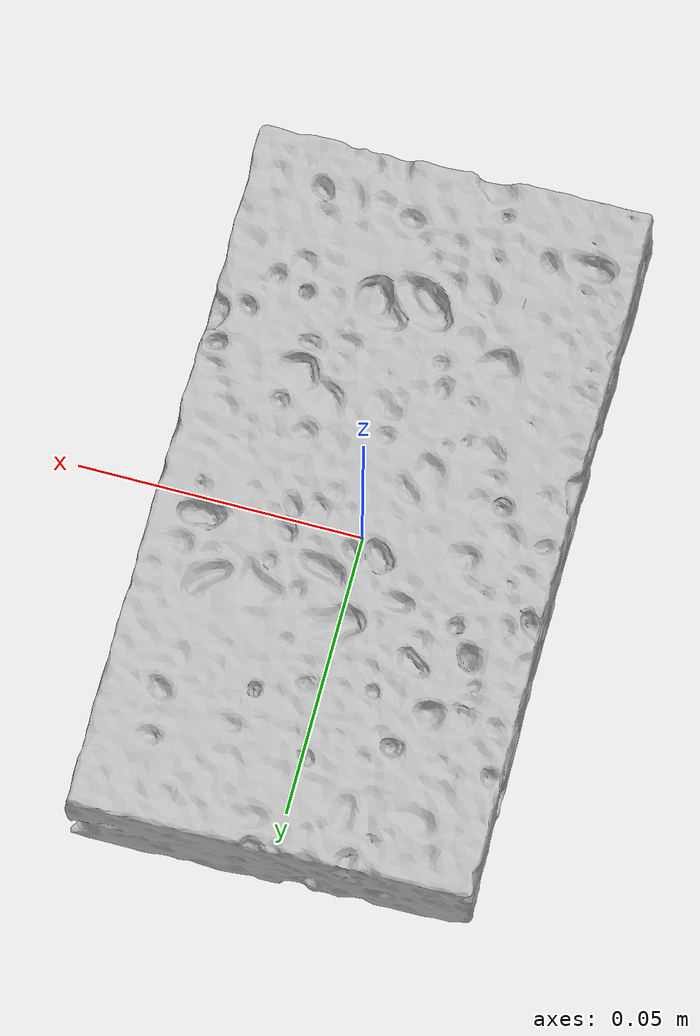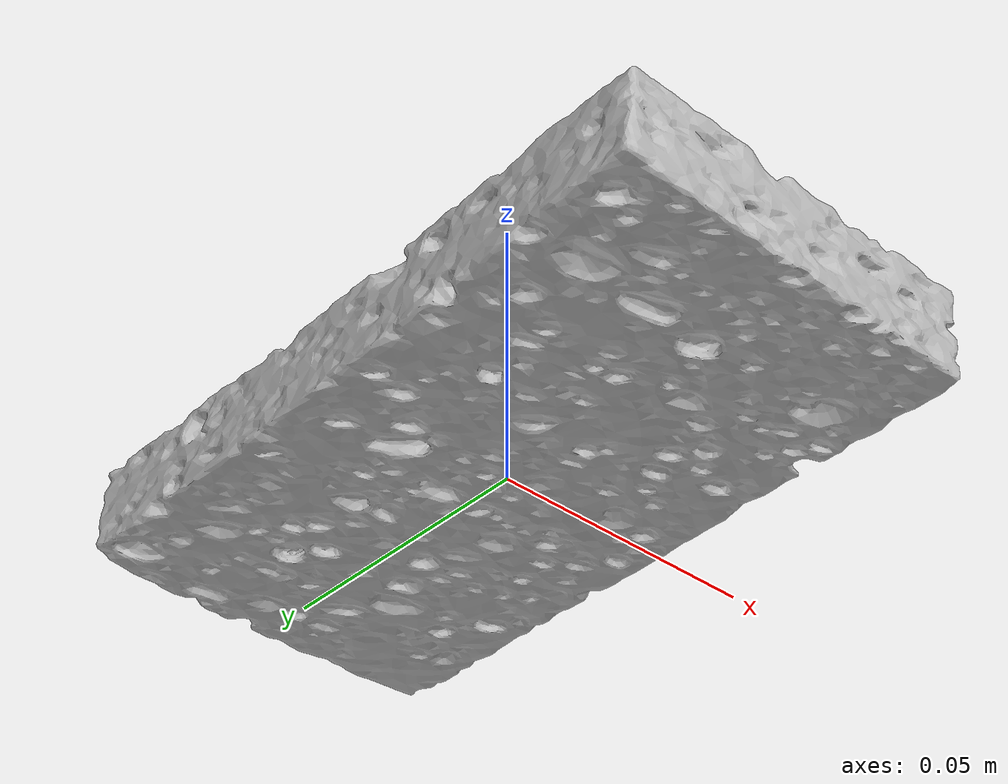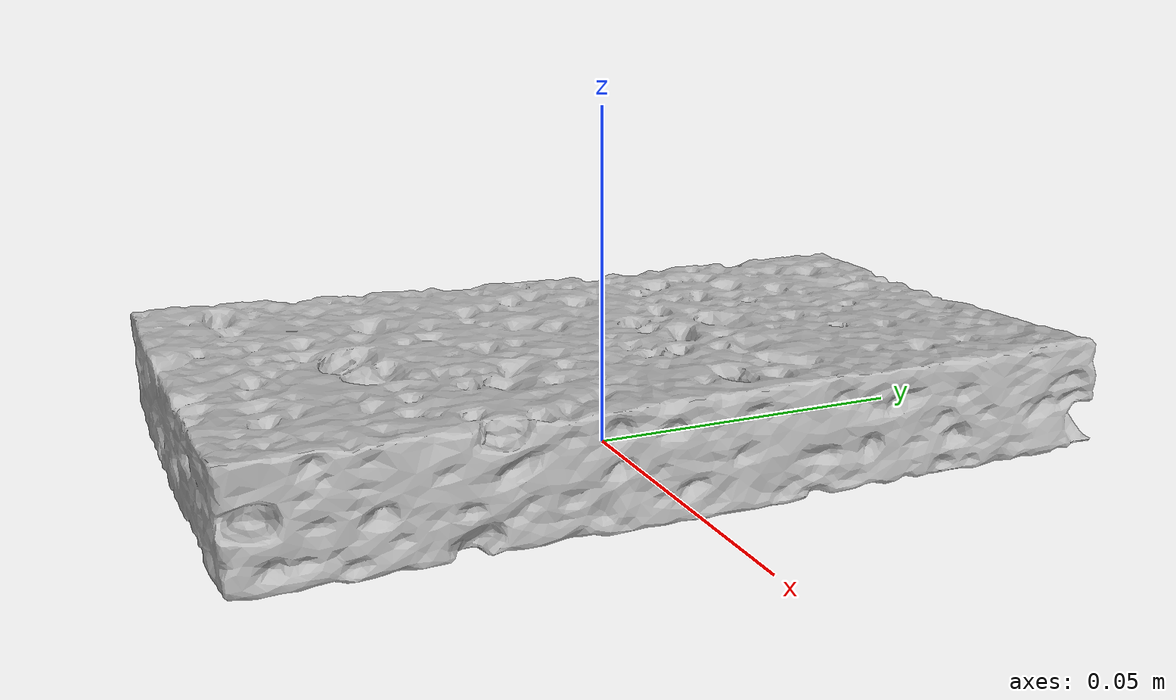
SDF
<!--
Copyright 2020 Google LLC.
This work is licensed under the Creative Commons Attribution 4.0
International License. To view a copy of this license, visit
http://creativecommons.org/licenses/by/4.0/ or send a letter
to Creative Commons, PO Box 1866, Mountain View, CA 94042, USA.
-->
<?xml version="1.0" ?>
<sdf version="1.6">
  <model name="Big_O_Sponges_Assorted_Cellulose_12_pack">
    <link name="link_0">
      <visual name="visual">
        <geometry>
          <mesh>
            <uri>meshes/model.obj</uri>
          </mesh>
        </geometry>
      </visual>
      <collision name="collision_0">
        <geometry>
          <mesh>
            <uri>meshes/model.obj</uri>
          </mesh>
        </geometry>
      </collision>
    </link>
  </model>
</sdf>
